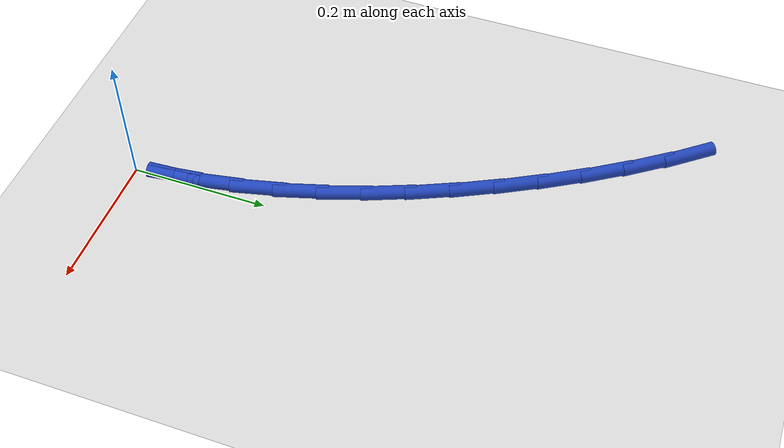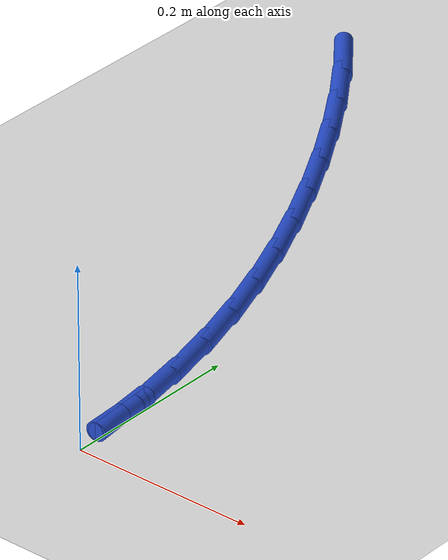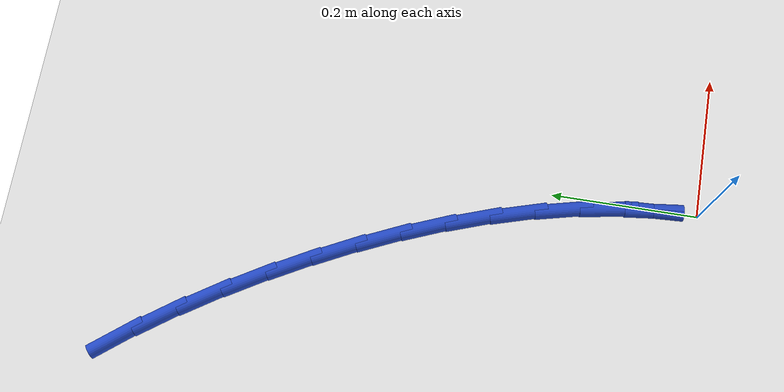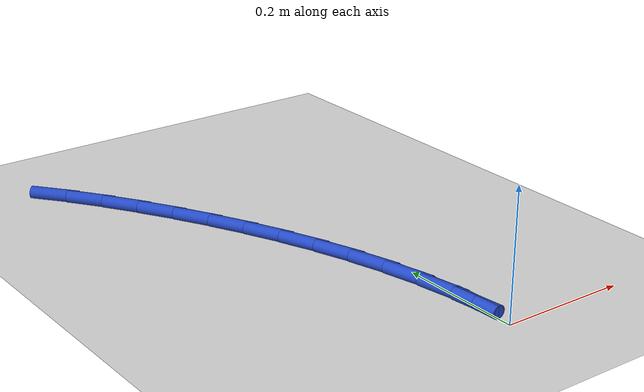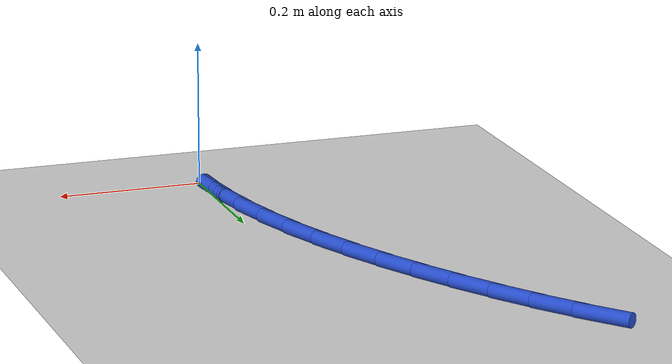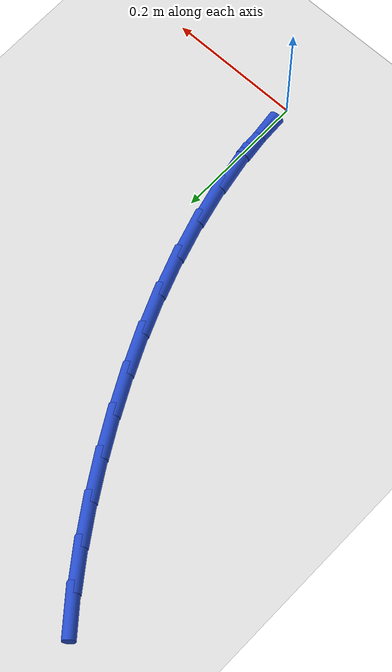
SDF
<sdf version="1.6">
 <world name="default">
  <model name="ground_plane">
   <static>1</static>
   <link name="link">
    <collision name="collision">
     <geometry><plane><normal>0 0 1</normal><size>100 100</size></plane></geometry>
     <surface><friction><ode><mu>100</mu><mu2>50</mu2></ode></friction></surface>
    </collision>
    <visual name="visual">
     <cast_shadows>0</cast_shadows>
     <geometry><plane><normal>0 0 1</normal><size>100 100</size></plane></geometry>
     <material>
      <script><uri>file://media/materials/scripts/gazebo.material</uri><name>Gazebo/WhiteGlow</name></script>
     </material>
    </visual>
   </link>
  </model>
  <model name="line">
   <link name="link_1">
    <pose>-0.0032087853549323535 0.061592101480525345 0.01 0 1.57 -1.4527760052261012</pose>
    <collision name="collision">
     <geometry><cylinder><radius>0.01</radius><length>0.08</length></cylinder></geometry>
    </collision>
    <visual name="visual">
     <material>
      <script><name>Gazebo/Blue</name><uri>file://media/materials/scripts/gazebo.material</uri></script>
     </material>
     <geometry><cylinder><radius>0.01</radius><length>0.08</length></cylinder></geometry>
    </visual>
   </link>
   <link name="link_2">
    <pose>-0.010437382952368639 0.12255621687567204 0.01 0 1.57 -1.3903588501231947</pose>
    <collision name="collision">
     <geometry><cylinder><radius>0.01</radius><length>0.08</length></cylinder></geometry>
    </collision>
    <visual name="visual">
     <material>
      <script><name>Gazebo/Blue</name><uri>file://media/materials/scripts/gazebo.material</uri></script>
     </material>
     <geometry><cylinder><radius>0.01</radius><length>0.08</length></cylinder></geometry>
    </visual>
   </link>
   <link name="link_3">
    <pose>-0.021439818839836075 0.18286947056465977 0.01 0 1.57 -1.331816743253009</pose>
    <collision name="collision">
     <geometry><cylinder><radius>0.01</radius><length>0.08</length></cylinder></geometry>
    </collision>
    <visual name="visual">
     <material>
      <script><name>Gazebo/Blue</name><uri>file://media/materials/scripts/gazebo.material</uri></script>
     </material>
     <geometry><cylinder><radius>0.01</radius><length>0.08</length></cylinder></geometry>
    </visual>
   </link>
   <link name="link_4">
    <pose>-0.03597011906486206 0.2425089869267088 0.01 0 1.57 -1.277327923511432</pose>
    <collision name="collision">
     <geometry><cylinder><radius>0.01</radius><length>0.08</length></cylinder></geometry>
    </collision>
    <visual name="visual">
     <material>
      <script><name>Gazebo/Blue</name><uri>file://media/materials/scripts/gazebo.material</uri></script>
     </material>
     <geometry><cylinder><radius>0.01</radius><length>0.08</length></cylinder></geometry>
    </visual>
   </link>
   <link name="link_5">
    <pose>-0.05378230967497391 0.30145189034103875 0.01 0 1.57 -1.2269496212615751</pose>
    <collision name="collision">
     <geometry><cylinder><radius>0.01</radius><length>0.08</length></cylinder></geometry>
    </collision>
    <visual name="visual">
     <material>
      <script><name>Gazebo/Blue</name><uri>file://media/materials/scripts/gazebo.material</uri></script>
     </material>
     <geometry><cylinder><radius>0.01</radius><length>0.08</length></cylinder></geometry>
    </visual>
   </link>
   <link name="link_6">
    <pose>-0.07463041671769895 0.3596753051868695 0.01 0 1.57 -1.1806448165586139</pose>
    <collision name="collision">
     <geometry><cylinder><radius>0.01</radius><length>0.08</length></cylinder></geometry>
    </collision>
    <visual name="visual">
     <material>
      <script><name>Gazebo/Blue</name><uri>file://media/materials/scripts/gazebo.material</uri></script>
     </material>
     <geometry><cylinder><radius>0.01</radius><length>0.08</length></cylinder></geometry>
    </visual>
   </link>
   <link name="link_7">
    <pose>-0.09826846624056457 0.4171563558434212 0.01 0 1.57 -1.1383087549750224</pose>
    <collision name="collision">
     <geometry><cylinder><radius>0.01</radius><length>0.08</length></cylinder></geometry>
    </collision>
    <visual name="visual">
     <material>
      <script><name>Gazebo/Blue</name><uri>file://media/materials/scripts/gazebo.material</uri></script>
     </material>
     <geometry><cylinder><radius>0.01</radius><length>0.08</length></cylinder></geometry>
    </visual>
   </link>
   <link name="link_8">
    <pose>-0.1244504842910981 0.4738721666899136 0.01 0 1.57 -1.0997926893784447</pose>
    <collision name="collision">
     <geometry><cylinder><radius>0.01</radius><length>0.08</length></cylinder></geometry>
    </collision>
    <visual name="visual">
     <material>
      <script><name>Gazebo/Blue</name><uri>file://media/materials/scripts/gazebo.material</uri></script>
     </material>
     <geometry><cylinder><radius>0.01</radius><length>0.08</length></cylinder></geometry>
    </visual>
   </link>
   <link name="link_9">
    <pose>-0.15293049691682692 0.5297998621055667 0.01 0 1.57 -1.064389444010176</pose>
    <collision name="collision">
     <geometry><cylinder><radius>0.01</radius><length>0.08</length></cylinder></geometry>
    </collision>
    <visual name="visual">
     <material>
      <script><name>Gazebo/Blue</name><uri>file://media/materials/scripts/gazebo.material</uri></script>
     </material>
     <geometry><cylinder><radius>0.01</radius><length>0.08</length></cylinder></geometry>
    </visual>
   </link>
   <link name="link_10">
    <pose>-0.18348798584615988 0.584893062978972 0.01 0 1.57 -1.027995902293486</pose>
    <collision name="collision">
     <geometry><cylinder><radius>0.01</radius><length>0.08</length></cylinder></geometry>
    </collision>
    <visual name="visual">
     <material>
      <script><name>Gazebo/Blue</name><uri>file://media/materials/scripts/gazebo.material</uri></script>
     </material>
     <geometry><cylinder><radius>0.01</radius><length>0.08</length></cylinder></geometry>
    </visual>
   </link>
   <link name="link_11">
    <pose>-0.2160878837502366 0.6389341614457054 0.01 0 1.57 -0.9886109803045912</pose>
    <collision name="collision">
     <geometry><cylinder><radius>0.01</radius><length>0.08</length></cylinder></geometry>
    </collision>
    <visual name="visual">
     <material>
      <script><name>Gazebo/Blue</name><uri>file://media/materials/scripts/gazebo.material</uri></script>
     </material>
     <geometry><cylinder><radius>0.01</radius><length>0.08</length></cylinder></geometry>
    </visual>
   </link>
   <link name="link_12">
    <pose>-0.2507772047924937 0.6916297629596216 0.01 0 1.57 -0.945928430440376</pose>
    <collision name="collision">
     <geometry><cylinder><radius>0.01</radius><length>0.08</length></cylinder></geometry>
    </collision>
    <visual name="visual">
     <material>
      <script><name>Gazebo/Blue</name><uri>file://media/materials/scripts/gazebo.material</uri></script>
     </material>
     <geometry><cylinder><radius>0.01</radius><length>0.08</length></cylinder></geometry>
    </visual>
   </link>
   <link name="link_13">
    <pose>-0.2876033285783117 0.7426861355582891 0.01 0 1.57 -0.8996457748955108</pose>
    <collision name="collision">
     <geometry><cylinder><radius>0.01</radius><length>0.08</length></cylinder></geometry>
    </collision>
    <visual name="visual">
     <material>
      <script><name>Gazebo/Blue</name><uri>file://media/materials/scripts/gazebo.material</uri></script>
     </material>
     <geometry><cylinder><radius>0.01</radius><length>0.08</length></cylinder></geometry>
    </visual>
   </link>
   <link name="link_111">
    <pose>-0.003264359463283052 0.06152629656486894 0.01 0 1.57 -1.5177896974464187</pose>
    <collision name="collision">
     <geometry><cylinder><radius>0.01</radius><length>0.08</length></cylinder></geometry>
    </collision>
    <visual name="visual">
     <material>
      <script><name>Gazebo/Blue</name><uri>file://media/materials/scripts/gazebo.material</uri></script>
     </material>
     <geometry><cylinder><radius>0.01</radius><length>0.08</length></cylinder></geometry>
    </visual>
   </link>
  </model>
 </world>
</sdf>
